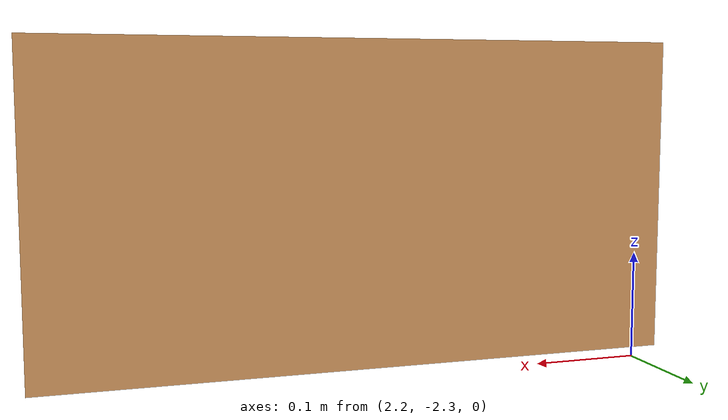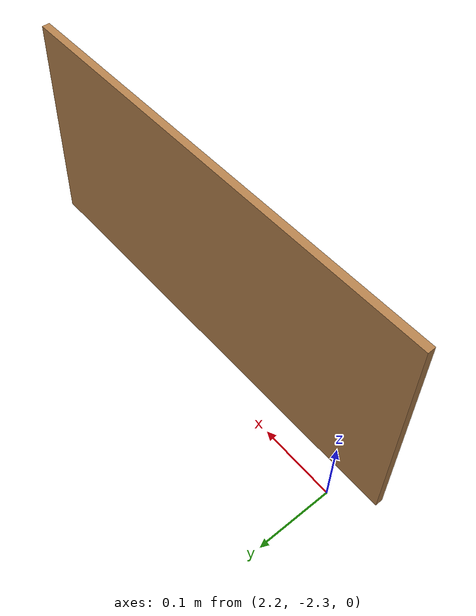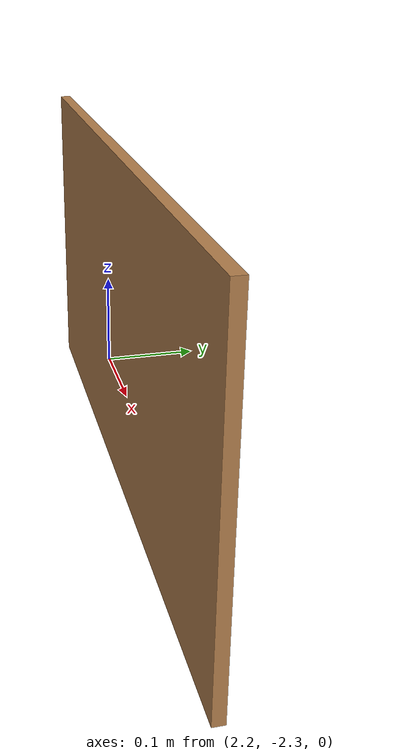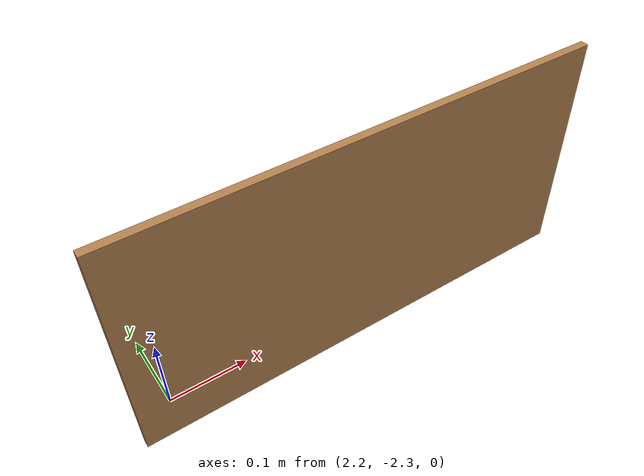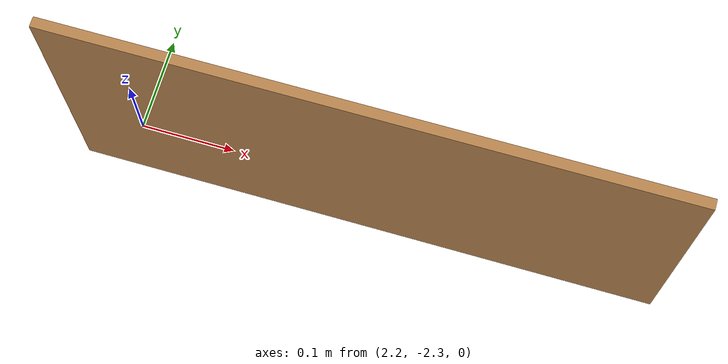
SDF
<?xml version='1.0'?>
<sdf version='1.7'>
  <model name='pared60'>
    <pose>1.37729 -1.17068 0 0 -0 0</pose>
    <link name='Wall_14'>
      <collision name='Wall_14_Collision'>
        <geometry>
          <box>
            <size>0.6 0.01 0.3</size>
          </box>
        </geometry>
        <pose>0 0 0.15 0 -0 0</pose>
      </collision>
      <visual name='Wall_14_Visual'>
        <pose>0 0 0.15 0 -0 0</pose>
        <geometry>
          <box>
            <size>0.6 0.01 0.3</size>
          </box>
        </geometry>
        <material>
          <script>
            <uri>file://media/materials/scripts/gazebo.material</uri>
            <name>Gazebo/Wood</name>
          </script>
          <ambient>1 1 1 1</ambient>
        </material>
        <meta>
          <layer>0</layer>
        </meta>
      </visual>
      <pose>1.07729 -1.16568 0 0 -0 0</pose>
    </link>
    <static>1</static>
  </model>
</sdf>
